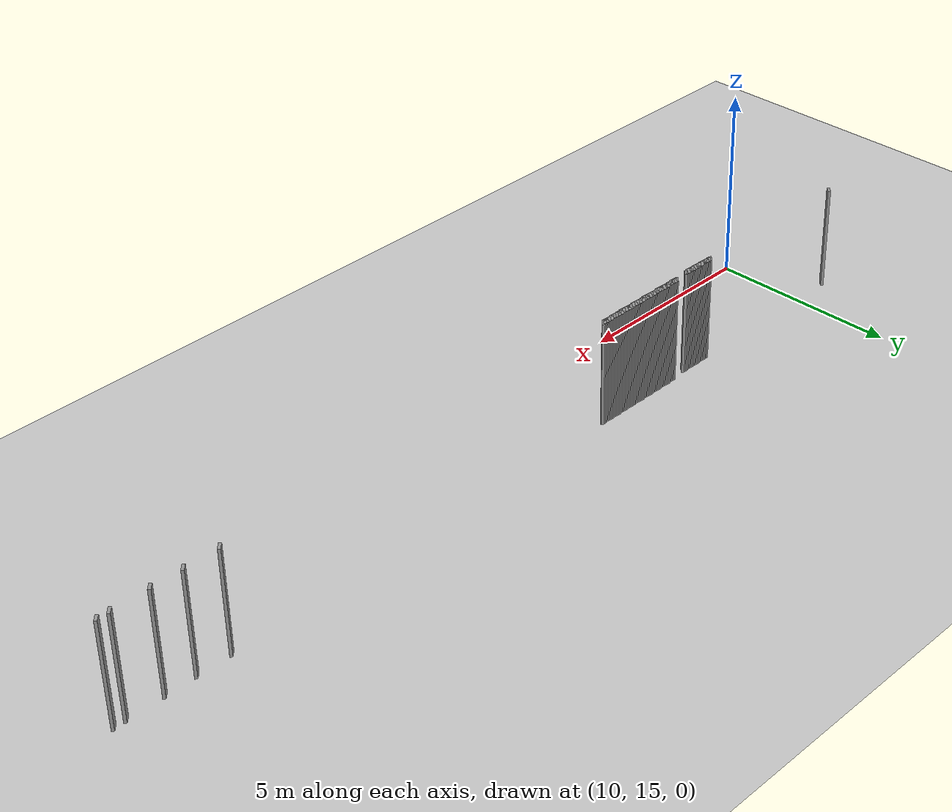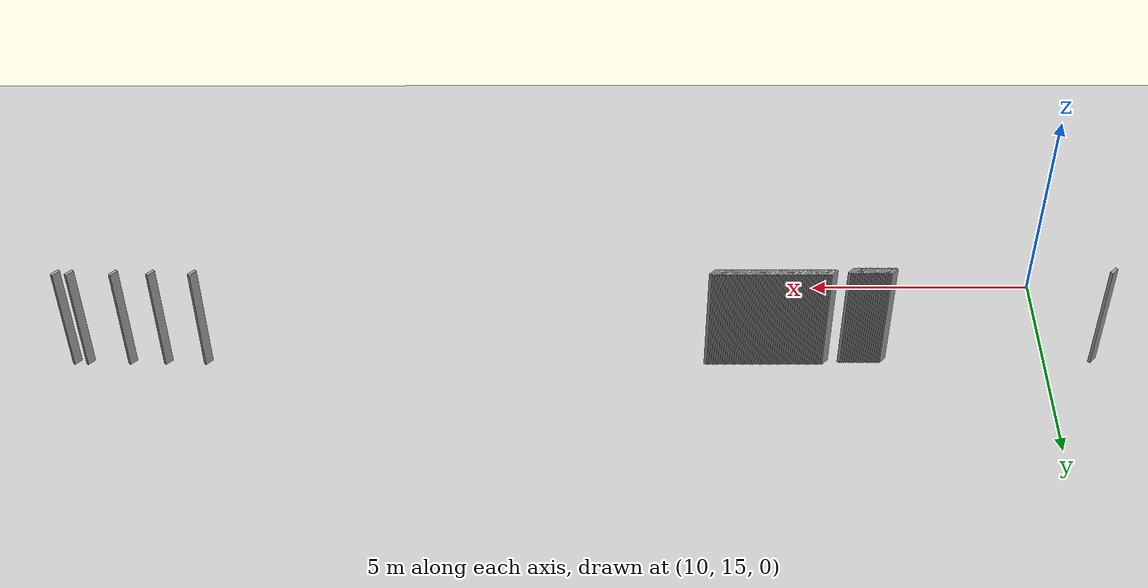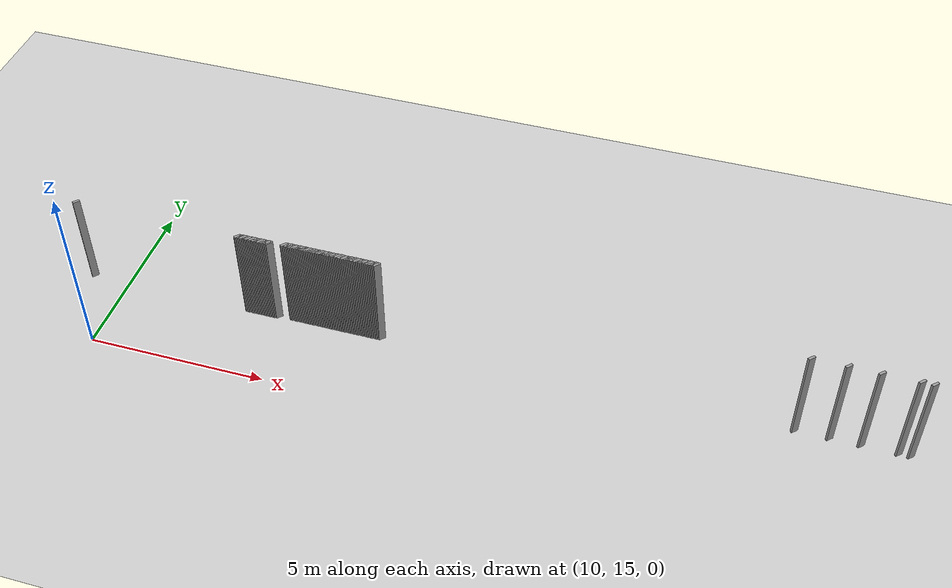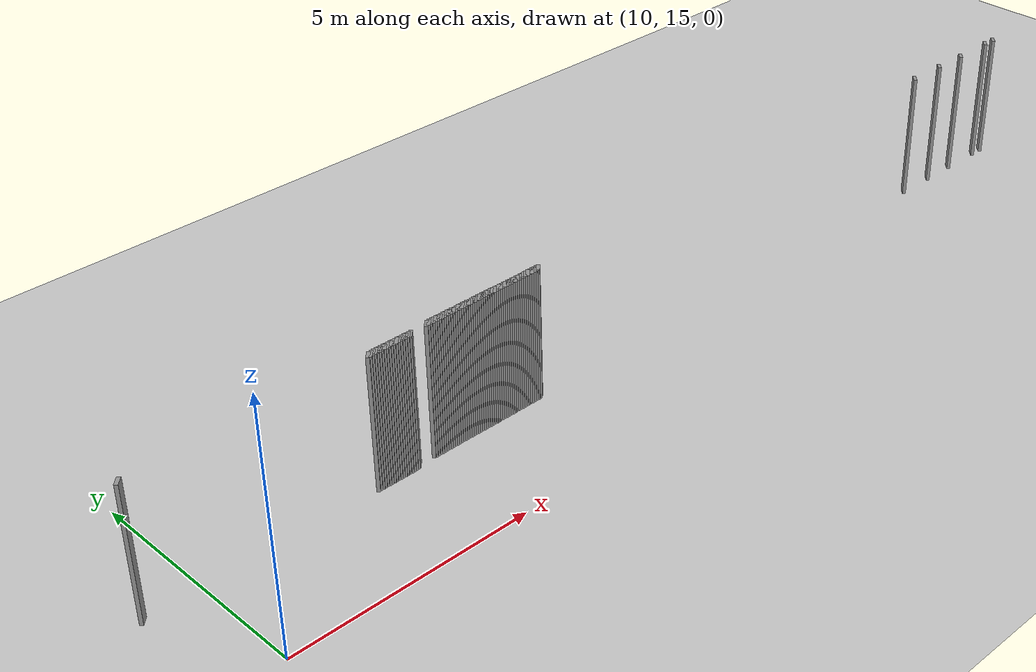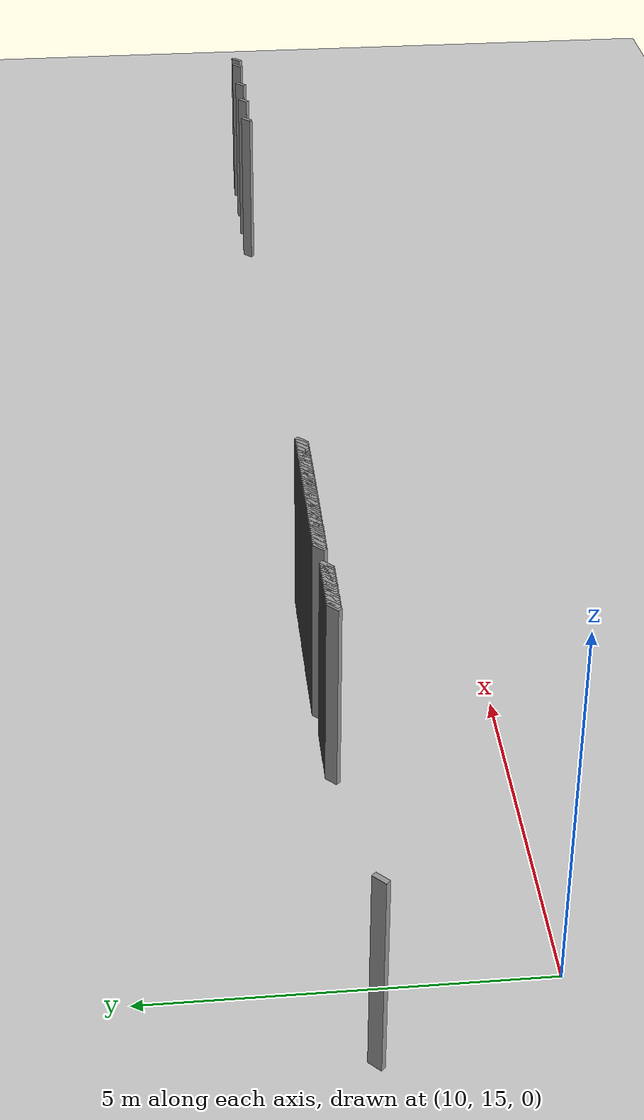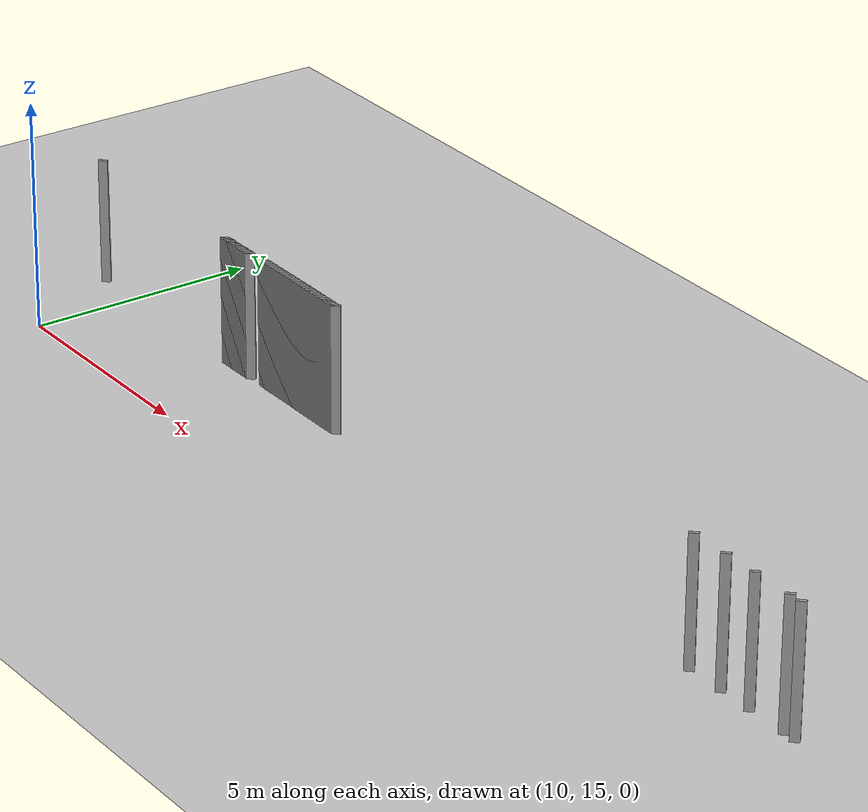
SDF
<sdf version="1.5">
 <world name="default">
  <include><uri>model://ground_plane</uri></include>
  <include><uri>model://sun</uri></include>
  <model name="grey_wall_869">
   <static>1</static>
   <link name="link">
    <pose>14.95 17.35  1.4 0 0 -0.785398163397</pose>
    <collision name="collision"><geometry><box><size>0.0707106781187 .2  2.8</size></box></geometry></collision>
    <visual name="visual">
     <cast_shadows>0</cast_shadows>
     <geometry><box><size>0.0707106781187 .2  2.8</size></box></geometry>
     <material>
      <script>
       <uri>model://grey_wall/materials/scripts</uri>
       <uri>model://grey_wall/materials/textures</uri>
       <name>vrc/grey_wall</name>
      </script>
     </material>
    </visual>
   </link>
  </model>
  <model name="grey_wall_870">
   <static>1</static>
   <link name="link">
    <pose>15.0 17.35  1.4 0 0 -0.785398163397</pose>
    <collision name="collision"><geometry><box><size>0.0707106781187 .2  2.8</size></box></geometry></collision>
    <visual name="visual">
     <cast_shadows>0</cast_shadows>
     <geometry><box><size>0.0707106781187 .2  2.8</size></box></geometry>
     <material>
      <script>
       <uri>model://grey_wall/materials/scripts</uri>
       <uri>model://grey_wall/materials/textures</uri>
       <name>vrc/grey_wall</name>
      </script>
     </material>
    </visual>
   </link>
  </model>
  <model name="grey_wall_871">
   <static>1</static>
   <link name="link">
    <pose>15.05 17.35  1.4 0 0 -0.785398163397</pose>
    <collision name="collision"><geometry><box><size>0.0707106781187 .2  2.8</size></box></geometry></collision>
    <visual name="visual">
     <cast_shadows>0</cast_shadows>
     <geometry><box><size>0.0707106781187 .2  2.8</size></box></geometry>
     <material>
      <script>
       <uri>model://grey_wall/materials/scripts</uri>
       <uri>model://grey_wall/materials/textures</uri>
       <name>vrc/grey_wall</name>
      </script>
     </material>
    </visual>
   </link>
  </model>
  <model name="grey_wall_872">
   <static>1</static>
   <link name="link">
    <pose>15.1 17.35  1.4 0 0 -0.785398163397</pose>
    <collision name="collision"><geometry><box><size>0.0707106781187 .2  2.8</size></box></geometry></collision>
    <visual name="visual">
     <cast_shadows>0</cast_shadows>
     <geometry><box><size>0.0707106781187 .2  2.8</size></box></geometry>
     <material>
      <script>
       <uri>model://grey_wall/materials/scripts</uri>
       <uri>model://grey_wall/materials/textures</uri>
       <name>vrc/grey_wall</name>
      </script>
     </material>
    </visual>
   </link>
  </model>
  <model name="grey_wall_873">
   <static>1</static>
   <link name="link">
    <pose>15.15 17.35  1.4 0 0 -0.785398163397</pose>
    <collision name="collision"><geometry><box><size>0.0707106781187 .2  2.8</size></box></geometry></collision>
    <visual name="visual">
     <cast_shadows>0</cast_shadows>
     <geometry><box><size>0.0707106781187 .2  2.8</size></box></geometry>
     <material>
      <script>
       <uri>model://grey_wall/materials/scripts</uri>
       <uri>model://grey_wall/materials/textures</uri>
       <name>vrc/grey_wall</name>
      </script>
     </material>
    </visual>
   </link>
  </model>
  <model name="grey_wall_874">
   <static>1</static>
   <link name="link">
    <pose>15.2 17.35  1.4 0 0 -0.785398163397</pose>
    <collision name="collision"><geometry><box><size>0.0707106781187 .2  2.8</size></box></geometry></collision>
    <visual name="visual">
     <cast_shadows>0</cast_shadows>
     <geometry><box><size>0.0707106781187 .2  2.8</size></box></geometry>
     <material>
      <script>
       <uri>model://grey_wall/materials/scripts</uri>
       <uri>model://grey_wall/materials/textures</uri>
       <name>vrc/grey_wall</name>
      </script>
     </material>
    </visual>
   </link>
  </model>
  <model name="grey_wall_875">
   <static>1</static>
   <link name="link">
    <pose>15.25 17.35  1.4 0 0 -0.785398163397</pose>
    <collision name="collision"><geometry><box><size>0.0707106781187 .2  2.8</size></box></geometry></collision>
    <visual name="visual">
     <cast_shadows>0</cast_shadows>
     <geometry><box><size>0.0707106781187 .2  2.8</size></box></geometry>
     <material>
      <script>
       <uri>model://grey_wall/materials/scripts</uri>
       <uri>model://grey_wall/materials/textures</uri>
       <name>vrc/grey_wall</name>
      </script>
     </material>
    </visual>
   </link>
  </model>
  <model name="grey_wall_876">
   <static>1</static>
   <link name="link">
    <pose>15.3 17.35  1.4 0 0 -0.785398163397</pose>
    <collision name="collision"><geometry><box><size>0.0707106781187 .2  2.8</size></box></geometry></collision>
    <visual name="visual">
     <cast_shadows>0</cast_shadows>
     <geometry><box><size>0.0707106781187 .2  2.8</size></box></geometry>
     <material>
      <script>
       <uri>model://grey_wall/materials/scripts</uri>
       <uri>model://grey_wall/materials/textures</uri>
       <name>vrc/grey_wall</name>
      </script>
     </material>
    </visual>
   </link>
  </model>
  <model name="grey_wall_877">
   <static>1</static>
   <link name="link">
    <pose>15.35 17.35  1.4 0 0 -0.785398163397</pose>
    <collision name="collision"><geometry><box><size>0.0707106781187 .2  2.8</size></box></geometry></collision>
    <visual name="visual">
     <cast_shadows>0</cast_shadows>
     <geometry><box><size>0.0707106781187 .2  2.8</size></box></geometry>
     <material>
      <script>
       <uri>model://grey_wall/materials/scripts</uri>
       <uri>model://grey_wall/materials/textures</uri>
       <name>vrc/grey_wall</name>
      </script>
     </material>
    </visual>
   </link>
  </model>
  <model name="grey_wall_878">
   <static>1</static>
   <link name="link">
    <pose>15.4 17.35  1.4 0 0 -0.785398163397</pose>
    <collision name="collision"><geometry><box><size>0.0707106781187 .2  2.8</size></box></geometry></collision>
    <visual name="visual">
     <cast_shadows>0</cast_shadows>
     <geometry><box><size>0.0707106781187 .2  2.8</size></box></geometry>
     <material>
      <script>
       <uri>model://grey_wall/materials/scripts</uri>
       <uri>model://grey_wall/materials/textures</uri>
       <name>vrc/grey_wall</name>
      </script>
     </material>
    </visual>
   </link>
  </model>
  <model name="grey_wall_879">
   <static>1</static>
   <link name="link">
    <pose>15.45 17.35  1.4 0 0 -0.785398163397</pose>
    <collision name="collision"><geometry><box><size>0.0707106781187 .2  2.8</size></box></geometry></collision>
    <visual name="visual">
     <cast_shadows>0</cast_shadows>
     <geometry><box><size>0.0707106781187 .2  2.8</size></box></geometry>
     <material>
      <script>
       <uri>model://grey_wall/materials/scripts</uri>
       <uri>model://grey_wall/materials/textures</uri>
       <name>vrc/grey_wall</name>
      </script>
     </material>
    </visual>
   </link>
  </model>
  <model name="grey_wall_880">
   <static>1</static>
   <link name="link">
    <pose>15.5 17.35  1.4 0 0 -0.785398163397</pose>
    <collision name="collision"><geometry><box><size>0.0707106781187 .2  2.8</size></box></geometry></collision>
    <visual name="visual">
     <cast_shadows>0</cast_shadows>
     <geometry><box><size>0.0707106781187 .2  2.8</size></box></geometry>
     <material>
      <script>
       <uri>model://grey_wall/materials/scripts</uri>
       <uri>model://grey_wall/materials/textures</uri>
       <name>vrc/grey_wall</name>
      </script>
     </material>
    </visual>
   </link>
  </model>
  <model name="grey_wall_881">
   <static>1</static>
   <link name="link">
    <pose>15.55 17.35  1.4 0 0 -0.785398163397</pose>
    <collision name="collision"><geometry><box><size>0.0707106781187 .2  2.8</size></box></geometry></collision>
    <visual name="visual">
     <cast_shadows>0</cast_shadows>
     <geometry><box><size>0.0707106781187 .2  2.8</size></box></geometry>
     <material>
      <script>
       <uri>model://grey_wall/materials/scripts</uri>
       <uri>model://grey_wall/materials/textures</uri>
       <name>vrc/grey_wall</name>
      </script>
     </material>
    </visual>
   </link>
  </model>
  <model name="grey_wall_882">
   <static>1</static>
   <link name="link">
    <pose>15.6 17.35  1.4 0 0 -0.785398163397</pose>
    <collision name="collision"><geometry><box><size>0.0707106781187 .2  2.8</size></box></geometry></collision>
    <visual name="visual">
     <cast_shadows>0</cast_shadows>
     <geometry><box><size>0.0707106781187 .2  2.8</size></box></geometry>
     <material>
      <script>
       <uri>model://grey_wall/materials/scripts</uri>
       <uri>model://grey_wall/materials/textures</uri>
       <name>vrc/grey_wall</name>
      </script>
     </material>
    </visual>
   </link>
  </model>
  <model name="grey_wall_883">
   <static>1</static>
   <link name="link">
    <pose>15.65 17.35  1.4 0 0 -0.785398163397</pose>
    <collision name="collision"><geometry><box><size>0.0707106781187 .2  2.8</size></box></geometry></collision>
    <visual name="visual">
     <cast_shadows>0</cast_shadows>
     <geometry><box><size>0.0707106781187 .2  2.8</size></box></geometry>
     <material>
      <script>
       <uri>model://grey_wall/materials/scripts</uri>
       <uri>model://grey_wall/materials/textures</uri>
       <name>vrc/grey_wall</name>
      </script>
     </material>
    </visual>
   </link>
  </model>
  <model name="grey_wall_884">
   <static>1</static>
   <link name="link">
    <pose>15.7 17.35  1.4 0 0 -0.785398163397</pose>
    <collision name="collision"><geometry><box><size>0.0707106781187 .2  2.8</size></box></geometry></collision>
    <visual name="visual">
     <cast_shadows>0</cast_shadows>
     <geometry><box><size>0.0707106781187 .2  2.8</size></box></geometry>
     <material>
      <script>
       <uri>model://grey_wall/materials/scripts</uri>
       <uri>model://grey_wall/materials/textures</uri>
       <name>vrc/grey_wall</name>
      </script>
     </material>
    </visual>
   </link>
  </model>
  <model name="grey_wall_885">
   <static>1</static>
   <link name="link">
    <pose>15.75 17.35  1.4 0 0 -0.785398163397</pose>
    <collision name="collision"><geometry><box><size>0.0707106781187 .2  2.8</size></box></geometry></collision>
    <visual name="visual">
     <cast_shadows>0</cast_shadows>
     <geometry><box><size>0.0707106781187 .2  2.8</size></box></geometry>
     <material>
      <script>
       <uri>model://grey_wall/materials/scripts</uri>
       <uri>model://grey_wall/materials/textures</uri>
       <name>vrc/grey_wall</name>
      </script>
     </material>
    </visual>
   </link>
  </model>
  <model name="grey_wall_886">
   <static>1</static>
   <link name="link">
    <pose>15.8 17.35  1.4 0 0 -0.785398163397</pose>
    <collision name="collision"><geometry><box><size>0.0707106781187 .2  2.8</size></box></geometry></collision>
    <visual name="visual">
     <cast_shadows>0</cast_shadows>
     <geometry><box><size>0.0707106781187 .2  2.8</size></box></geometry>
     <material>
      <script>
       <uri>model://grey_wall/materials/scripts</uri>
       <uri>model://grey_wall/materials/textures</uri>
       <name>vrc/grey_wall</name>
      </script>
     </material>
    </visual>
   </link>
  </model>
  <model name="grey_wall_887">
   <static>1</static>
   <link name="link">
    <pose>15.85 17.35  1.4 0 0 -0.785398163397</pose>
    <collision name="collision"><geometry><box><size>0.0707106781187 .2  2.8</size></box></geometry></collision>
    <visual name="visual">
     <cast_shadows>0</cast_shadows>
     <geometry><box><size>0.0707106781187 .2  2.8</size></box></geometry>
     <material>
      <script>
       <uri>model://grey_wall/materials/scripts</uri>
       <uri>model://grey_wall/materials/textures</uri>
       <name>vrc/grey_wall</name>
      </script>
     </material>
    </visual>
   </link>
  </model>
  <model name="grey_wall_888">
   <static>1</static>
   <link name="link">
    <pose>15.9 17.35  1.4 0 0 -0.785398163397</pose>
    <collision name="collision"><geometry><box><size>0.0707106781187 .2  2.8</size></box></geometry></collision>
    <visual name="visual">
     <cast_shadows>0</cast_shadows>
     <geometry><box><size>0.0707106781187 .2  2.8</size></box></geometry>
     <material>
      <script>
       <uri>model://grey_wall/materials/scripts</uri>
       <uri>model://grey_wall/materials/textures</uri>
       <name>vrc/grey_wall</name>
      </script>
     </material>
    </visual>
   </link>
  </model>
  <model name="grey_wall_889">
   <static>1</static>
   <link name="link">
    <pose>15.95 17.35  1.4 0 0 -0.785398163397</pose>
    <collision name="collision"><geometry><box><size>0.0707106781187 .2  2.8</size></box></geometry></collision>
    <visual name="visual">
     <cast_shadows>0</cast_shadows>
     <geometry><box><size>0.0707106781187 .2  2.8</size></box></geometry>
     <material>
      <script>
       <uri>model://grey_wall/materials/scripts</uri>
       <uri>model://grey_wall/materials/textures</uri>
       <name>vrc/grey_wall</name>
      </script>
     </material>
    </visual>
   </link>
  </model>
  <model name="grey_wall_890">
   <static>1</static>
   <link name="link">
    <pose>16.0 17.35  1.4 0 0 -0.785398163397</pose>
    <collision name="collision"><geometry><box><size>0.0707106781187 .2  2.8</size></box></geometry></collision>
    <visual name="visual">
     <cast_shadows>0</cast_shadows>
     <geometry><box><size>0.0707106781187 .2  2.8</size></box></geometry>
     <material>
      <script>
       <uri>model://grey_wall/materials/scripts</uri>
       <uri>model://grey_wall/materials/textures</uri>
       <name>vrc/grey_wall</name>
      </script>
     </material>
    </visual>
   </link>
  </model>
  <model name="grey_wall_891">
   <static>1</static>
   <link name="link">
    <pose>16.05 17.35  1.4 0 0 -0.785398163397</pose>
    <collision name="collision"><geometry><box><size>0.0707106781187 .2  2.8</size></box></geometry></collision>
    <visual name="visual">
     <cast_shadows>0</cast_shadows>
     <geometry><box><size>0.0707106781187 .2  2.8</size></box></geometry>
     <material>
      <script>
       <uri>model://grey_wall/materials/scripts</uri>
       <uri>model://grey_wall/materials/textures</uri>
       <name>vrc/grey_wall</name>
      </script>
     </material>
    </visual>
   </link>
  </model>
  <model name="grey_wall_892">
   <static>1</static>
   <link name="link">
    <pose>16.1 17.35  1.4 0 0 -0.785398163397</pose>
    <collision name="collision"><geometry><box><size>0.0707106781187 .2  2.8</size></box></geometry></collision>
    <visual name="visual">
     <cast_shadows>0</cast_shadows>
     <geometry><box><size>0.0707106781187 .2  2.8</size></box></geometry>
     <material>
      <script>
       <uri>model://grey_wall/materials/scripts</uri>
       <uri>model://grey_wall/materials/textures</uri>
       <name>vrc/grey_wall</name>
      </script>
     </material>
    </visual>
   </link>
  </model>
  <model name="grey_wall_893">
   <static>1</static>
   <link name="link">
    <pose>16.15 17.35  1.4 0 0 -0.785398163397</pose>
    <collision name="collision"><geometry><box><size>0.0707106781187 .2  2.8</size></box></geometry></collision>
    <visual name="visual">
     <cast_shadows>0</cast_shadows>
     <geometry><box><size>0.0707106781187 .2  2.8</size></box></geometry>
     <material>
      <script>
       <uri>model://grey_wall/materials/scripts</uri>
       <uri>model://grey_wall/materials/textures</uri>
       <name>vrc/grey_wall</name>
      </script>
     </material>
    </visual>
   </link>
  </model>
  <model name="grey_wall_894">
   <static>1</static>
   <link name="link">
    <pose>16.2 17.35  1.4 0 0 -0.785398163397</pose>
    <collision name="collision"><geometry><box><size>0.0707106781187 .2  2.8</size></box></geometry></collision>
    <visual name="visual">
     <cast_shadows>0</cast_shadows>
     <geometry><box><size>0.0707106781187 .2  2.8</size></box></geometry>
     <material>
      <script>
       <uri>model://grey_wall/materials/scripts</uri>
       <uri>model://grey_wall/materials/textures</uri>
       <name>vrc/grey_wall</name>
      </script>
     </material>
    </visual>
   </link>
  </model>
  <model name="grey_wall_895">
   <static>1</static>
   <link name="link">
    <pose>16.25 17.35  1.4 0 0 -0.785398163397</pose>
    <collision name="collision"><geometry><box><size>0.0707106781187 .2  2.8</size></box></geometry></collision>
    <visual name="visual">
     <cast_shadows>0</cast_shadows>
     <geometry><box><size>0.0707106781187 .2  2.8</size></box></geometry>
     <material>
      <script>
       <uri>model://grey_wall/materials/scripts</uri>
       <uri>model://grey_wall/materials/textures</uri>
       <name>vrc/grey_wall</name>
      </script>
     </material>
    </visual>
   </link>
  </model>
  <model name="grey_wall_896">
   <static>1</static>
   <link name="link">
    <pose>16.3 17.35  1.4 0 0 -0.785398163397</pose>
    <collision name="collision"><geometry><box><size>0.0707106781187 .2  2.8</size></box></geometry></collision>
    <visual name="visual">
     <cast_shadows>0</cast_shadows>
     <geometry><box><size>0.0707106781187 .2  2.8</size></box></geometry>
     <material>
      <script>
       <uri>model://grey_wall/materials/scripts</uri>
       <uri>model://grey_wall/materials/textures</uri>
       <name>vrc/grey_wall</name>
      </script>
     </material>
    </visual>
   </link>
  </model>
  <model name="grey_wall_897">
   <static>1</static>
   <link name="link">
    <pose>16.35 17.35  1.4 0 0 -0.785398163397</pose>
    <collision name="collision"><geometry><box><size>0.0707106781187 .2  2.8</size></box></geometry></collision>
    <visual name="visual">
     <cast_shadows>0</cast_shadows>
     <geometry><box><size>0.0707106781187 .2  2.8</size></box></geometry>
     <material>
      <script>
       <uri>model://grey_wall/materials/scripts</uri>
       <uri>model://grey_wall/materials/textures</uri>
       <name>vrc/grey_wall</name>
      </script>
     </material>
    </visual>
   </link>
  </model>
  <model name="grey_wall_898">
   <static>1</static>
   <link name="link">
    <pose>16.4 17.35  1.4 0 0 -0.785398163397</pose>
    <collision name="collision"><geometry><box><size>0.0707106781187 .2  2.8</size></box></geometry></collision>
    <visual name="visual">
     <cast_shadows>0</cast_shadows>
     <geometry><box><size>0.0707106781187 .2  2.8</size></box></geometry>
     <material>
      <script>
       <uri>model://grey_wall/materials/scripts</uri>
       <uri>model://grey_wall/materials/textures</uri>
       <name>vrc/grey_wall</name>
      </script>
     </material>
    </visual>
   </link>
  </model>
  <model name="grey_wall_899">
   <static>1</static>
   <link name="link">
    <pose>16.45 17.35  1.4 0 0 -0.785398163397</pose>
    <collision name="collision"><geometry><box><size>0.0707106781187 .2  2.8</size></box></geometry></collision>
    <visual name="visual">
     <cast_shadows>0</cast_shadows>
     <geometry><box><size>0.0707106781187 .2  2.8</size></box></geometry>
     <material>
      <script>
       <uri>model://grey_wall/materials/scripts</uri>
       <uri>model://grey_wall/materials/textures</uri>
       <name>vrc/grey_wall</name>
      </script>
     </material>
    </visual>
   </link>
  </model>
  <model name="grey_wall_900">
   <static>1</static>
   <link name="link">
    <pose>16.5 17.35  1.4 0 0 -0.785398163397</pose>
    <collision name="collision"><geometry><box><size>0.0707106781187 .2  2.8</size></box></geometry></collision>
    <visual name="visual">
     <cast_shadows>0</cast_shadows>
     <geometry><box><size>0.0707106781187 .2  2.8</size></box></geometry>
     <material>
      <script>
       <uri>model://grey_wall/materials/scripts</uri>
       <uri>model://grey_wall/materials/textures</uri>
       <name>vrc/grey_wall</name>
      </script>
     </material>
    </visual>
   </link>
  </model>
  <model name="grey_wall_901">
   <static>1</static>
   <link name="link">
    <pose>16.55 17.35  1.4 0 0 -0.785398163397</pose>
    <collision name="collision"><geometry><box><size>0.0707106781187 .2  2.8</size></box></geometry></collision>
    <visual name="visual">
     <cast_shadows>0</cast_shadows>
     <geometry><box><size>0.0707106781187 .2  2.8</size></box></geometry>
     <material>
      <script>
       <uri>model://grey_wall/materials/scripts</uri>
       <uri>model://grey_wall/materials/textures</uri>
       <name>vrc/grey_wall</name>
      </script>
     </material>
    </visual>
   </link>
  </model>
  <model name="grey_wall_902">
   <static>1</static>
   <link name="link">
    <pose>16.6 17.35  1.4 0 0 -0.785398163397</pose>
    <collision name="collision"><geometry><box><size>0.0707106781187 .2  2.8</size></box></geometry></collision>
    <visual name="visual">
     <cast_shadows>0</cast_shadows>
     <geometry><box><size>0.0707106781187 .2  2.8</size></box></geometry>
     <material>
      <script>
       <uri>model://grey_wall/materials/scripts</uri>
       <uri>model://grey_wall/materials/textures</uri>
       <name>vrc/grey_wall</name>
      </script>
     </material>
    </visual>
   </link>
  </model>
  <model name="grey_wall_903">
   <static>1</static>
   <link name="link">
    <pose>16.65 17.35  1.4 0 0 -0.785398163397</pose>
    <collision name="collision"><geometry><box><size>0.0707106781187 .2  2.8</size></box></geometry></collision>
    <visual name="visual">
     <cast_shadows>0</cast_shadows>
     <geometry><box><size>0.0707106781187 .2  2.8</size></box></geometry>
     <material>
      <script>
       <uri>model://grey_wall/materials/scripts</uri>
       <uri>model://grey_wall/materials/textures</uri>
       <name>vrc/grey_wall</name>
      </script>
     </material>
    </visual>
   </link>
  </model>
  <model name="grey_wall_904">
   <static>1</static>
   <link name="link">
    <pose>16.7 17.35  1.4 0 0 -0.785398163397</pose>
    <collision name="collision"><geometry><box><size>0.0707106781187 .2  2.8</size></box></geometry></collision>
    <visual name="visual">
     <cast_shadows>0</cast_shadows>
     <geometry><box><size>0.0707106781187 .2  2.8</size></box></geometry>
     <material>
      <script>
       <uri>model://grey_wall/materials/scripts</uri>
       <uri>model://grey_wall/materials/textures</uri>
       <name>vrc/grey_wall</name>
      </script>
     </material>
    </visual>
   </link>
  </model>
  <model name="grey_wall_905">
   <static>1</static>
   <link name="link">
    <pose>16.75 17.35  1.4 0 0 -0.785398163397</pose>
    <collision name="collision"><geometry><box><size>0.0707106781187 .2  2.8</size></box></geometry></collision>
    <visual name="visual">
     <cast_shadows>0</cast_shadows>
     <geometry><box><size>0.0707106781187 .2  2.8</size></box></geometry>
     <material>
      <script>
       <uri>model://grey_wall/materials/scripts</uri>
       <uri>model://grey_wall/materials/textures</uri>
       <name>vrc/grey_wall</name>
      </script>
     </material>
    </visual>
   </link>
  </model>
  <model name="grey_wall_906">
   <static>1</static>
   <link name="link">
    <pose>16.8 17.35  1.4 0 0 -0.785398163397</pose>
    <collision name="collision"><geometry><box><size>0.0707106781187 .2  2.8</size></box></geometry></collision>
    <visual name="visual">
     <cast_shadows>0</cast_shadows>
     <geometry><box><size>0.0707106781187 .2  2.8</size></box></geometry>
     <material>
      <script>
       <uri>model://grey_wall/materials/scripts</uri>
       <uri>model://grey_wall/materials/textures</uri>
       <name>vrc/grey_wall</name>
      </script>
     </material>
    </visual>
   </link>
  </model>
  <model name="grey_wall_907">
   <static>1</static>
   <link name="link">
    <pose>16.85 17.35  1.4 0 0 -0.785398163397</pose>
    <collision name="collision"><geometry><box><size>0.0707106781187 .2  2.8</size></box></geometry></collision>
    <visual name="visual">
     <cast_shadows>0</cast_shadows>
     <geometry><box><size>0.0707106781187 .2  2.8</size></box></geometry>
     <material>
      <script>
       <uri>model://grey_wall/materials/scripts</uri>
       <uri>model://grey_wall/materials/textures</uri>
       <name>vrc/grey_wall</name>
      </script>
     </material>
    </visual>
   </link>
  </model>
  <model name="grey_wall_908">
   <static>1</static>
   <link name="link">
    <pose>16.9 17.35  1.4 0 0 -0.785398163397</pose>
    <collision name="collision"><geometry><box><size>0.0707106781187 .2  2.8</size></box></geometry></collision>
    <visual name="visual">
     <cast_shadows>0</cast_shadows>
     <geometry><box><size>0.0707106781187 .2  2.8</size></box></geometry>
     <material>
      <script>
       <uri>model://grey_wall/materials/scripts</uri>
       <uri>model://grey_wall/materials/textures</uri>
       <name>vrc/grey_wall</name>
      </script>
     </material>
    </visual>
   </link>
  </model>
  <model name="grey_wall_909">
   <static>1</static>
   <link name="link">
    <pose>16.95 17.35  1.4 0 0 -0.785398163397</pose>
    <collision name="collision"><geometry><box><size>0.0707106781187 .2  2.8</size></box></geometry></collision>
    <visual name="visual">
     <cast_shadows>0</cast_shadows>
     <geometry><box><size>0.0707106781187 .2  2.8</size></box></geometry>
     <material>
      <script>
       <uri>model://grey_wall/materials/scripts</uri>
       <uri>model://grey_wall/materials/textures</uri>
       <name>vrc/grey_wall</name>
      </script>
     </material>
    </visual>
   </link>
  </model>
  <model name="grey_wall_910">
   <static>1</static>
   <link name="link">
    <pose>17.0 17.35  1.4 0 0 -0.785398163397</pose>
    <collision name="collision"><geometry><box><size>0.0707106781187 .2  2.8</size></box></geometry></collision>
    <visual name="visual">
     <cast_shadows>0</cast_shadows>
     <geometry><box><size>0.0707106781187 .2  2.8</size></box></geometry>
     <material>
      <script>
       <uri>model://grey_wall/materials/scripts</uri>
       <uri>model://grey_wall/materials/textures</uri>
       <name>vrc/grey_wall</name>
      </script>
     </material>
    </visual>
   </link>
  </model>
  <model name="grey_wall_911">
   <static>1</static>
   <link name="link">
    <pose>17.05 17.35  1.4 0 0 -0.785398163397</pose>
    <collision name="collision"><geometry><box><size>0.0707106781187 .2  2.8</size></box></geometry></collision>
    <visual name="visual">
     <cast_shadows>0</cast_shadows>
     <geometry><box><size>0.0707106781187 .2  2.8</size></box></geometry>
     <material>
      <script>
       <uri>model://grey_wall/materials/scripts</uri>
       <uri>model://grey_wall/materials/textures</uri>
       <name>vrc/grey_wall</name>
      </script>
     </material>
    </visual>
   </link>
  </model>
  <model name="grey_wall_912">
   <static>1</static>
   <link name="link">
    <pose>17.1 17.35  1.4 0 0 -0.785398163397</pose>
    <collision name="collision"><geometry><box><size>0.0707106781187 .2  2.8</size></box></geometry></collision>
    <visual name="visual">
     <cast_shadows>0</cast_shadows>
     <geometry><box><size>0.0707106781187 .2  2.8</size></box></geometry>
     <material>
      <script>
       <uri>model://grey_wall/materials/scripts</uri>
       <uri>model://grey_wall/materials/textures</uri>
       <name>vrc/grey_wall</name>
      </script>
     </material>
    </visual>
   </link>
  </model>
  <model name="grey_wall_913">
   <static>1</static>
   <link name="link">
    <pose>17.15 17.35  1.4 0 0 -0.785398163397</pose>
    <collision name="collision"><geometry><box><size>0.0707106781187 .2  2.8</size></box></geometry></collision>
    <visual name="visual">
     <cast_shadows>0</cast_shadows>
     <geometry><box><size>0.0707106781187 .2  2.8</size></box></geometry>
     <material>
      <script>
       <uri>model://grey_wall/materials/scripts</uri>
       <uri>model://grey_wall/materials/textures</uri>
       <name>vrc/grey_wall</name>
      </script>
     </material>
    </visual>
   </link>
  </model>
  <model name="grey_wall_914">
   <static>1</static>
   <link name="link">
    <pose>17.2 17.35  1.4 0 0 -0.785398163397</pose>
    <collision name="collision"><geometry><box><size>0.0707106781187 .2  2.8</size></box></geometry></collision>
    <visual name="visual">
     <cast_shadows>0</cast_shadows>
     <geometry><box><size>0.0707106781187 .2  2.8</size></box></geometry>
     <material>
      <script>
       <uri>model://grey_wall/materials/scripts</uri>
       <uri>model://grey_wall/materials/textures</uri>
       <name>vrc/grey_wall</name>
      </script>
     </material>
    </visual>
   </link>
  </model>
  <model name="grey_wall_915">
   <static>1</static>
   <link name="link">
    <pose>17.25 17.35  1.4 0 0 -0.785398163397</pose>
    <collision name="collision"><geometry><box><size>0.0707106781187 .2  2.8</size></box></geometry></collision>
    <visual name="visual">
     <cast_shadows>0</cast_shadows>
     <geometry><box><size>0.0707106781187 .2  2.8</size></box></geometry>
     <material>
      <script>
       <uri>model://grey_wall/materials/scripts</uri>
       <uri>model://grey_wall/materials/textures</uri>
       <name>vrc/grey_wall</name>
      </script>
     </material>
    </visual>
   </link>
  </model>
  <model name="grey_wall_916">
   <static>1</static>
   <link name="link">
    <pose>17.3 17.35  1.4 0 0 -0.785398163397</pose>
    <collision name="collision"><geometry><box><size>0.0707106781187 .2  2.8</size></box></geometry></collision>
    <visual name="visual">
     <cast_shadows>0</cast_shadows>
     <geometry><box><size>0.0707106781187 .2  2.8</size></box></geometry>
     <material>
      <script>
       <uri>model://grey_wall/materials/scripts</uri>
       <uri>model://grey_wall/materials/textures</uri>
       <name>vrc/grey_wall</name>
      </script>
     </material>
    </visual>
   </link>
  </model>
  <model name="grey_wall_917">
   <static>1</static>
   <link name="link">
    <pose>17.35 17.35  1.4 0 0 -0.785398163397</pose>
    <collision name="collision"><geometry><box><size>0.0707106781187 .2  2.8</size></box></geometry></collision>
    <visual name="visual">
     <cast_shadows>0</cast_shadows>
     <geometry><box><size>0.0707106781187 .2  2.8</size></box></geometry>
     <material>
      <script>
       <uri>model://grey_wall/materials/scripts</uri>
       <uri>model://grey_wall/materials/textures</uri>
       <name>vrc/grey_wall</name>
      </script>
     </material>
    </visual>
   </link>
  </model>
  <model name="grey_wall_918">
   <static>1</static>
   <link name="link">
    <pose>17.4 17.35  1.4 0 0 -0.785398163397</pose>
    <collision name="collision"><geometry><box><size>0.0707106781187 .2  2.8</size></box></geometry></collision>
    <visual name="visual">
     <cast_shadows>0</cast_shadows>
     <geometry><box><size>0.0707106781187 .2  2.8</size></box></geometry>
     <material>
      <script>
       <uri>model://grey_wall/materials/scripts</uri>
       <uri>model://grey_wall/materials/textures</uri>
       <name>vrc/grey_wall</name>
      </script>
     </material>
    </visual>
   </link>
  </model>
  <model name="grey_wall_919">
   <static>1</static>
   <link name="link">
    <pose>17.45 17.35  1.4 0 0 -0.785398163397</pose>
    <collision name="collision"><geometry><box><size>0.0707106781187 .2  2.8</size></box></geometry></collision>
    <visual name="visual">
     <cast_shadows>0</cast_shadows>
     <geometry><box><size>0.0707106781187 .2  2.8</size></box></geometry>
     <material>
      <script>
       <uri>model://grey_wall/materials/scripts</uri>
       <uri>model://grey_wall/materials/textures</uri>
       <name>vrc/grey_wall</name>
      </script>
     </material>
    </visual>
   </link>
  </model>
  <model name="grey_wall_920">
   <static>1</static>
   <link name="link">
    <pose>17.5 17.35  1.4 0 0 -0.785398163397</pose>
    <collision name="collision"><geometry><box><size>0.0707106781187 .2  2.8</size></box></geometry></collision>
    <visual name="visual">
     <cast_shadows>0</cast_shadows>
     <geometry><box><size>0.0707106781187 .2  2.8</size></box></geometry>
     <material>
      <script>
       <uri>model://grey_wall/materials/scripts</uri>
       <uri>model://grey_wall/materials/textures</uri>
       <name>vrc/grey_wall</name>
      </script>
     </material>
    </visual>
   </link>
  </model>
  <model name="grey_wall_921">
   <static>1</static>
   <link name="link">
    <pose>17.55 17.35  1.4 0 0 -0.785398163397</pose>
    <collision name="collision"><geometry><box><size>0.0707106781187 .2  2.8</size></box></geometry></collision>
    <visual name="visual">
     <cast_shadows>0</cast_shadows>
     <geometry><box><size>0.0707106781187 .2  2.8</size></box></geometry>
     <material>
      <script>
       <uri>model://grey_wall/materials/scripts</uri>
       <uri>model://grey_wall/materials/textures</uri>
       <name>vrc/grey_wall</name>
      </script>
     </material>
    </visual>
   </link>
  </model>
  <model name="grey_wall_922">
   <static>1</static>
   <link name="link">
    <pose>28.8 17.35  1.4 0 0 -0.785398163397</pose>
    <collision name="collision"><geometry><box><size>0.0707106781187 .2  2.8</size></box></geometry></collision>
    <visual name="visual">
     <cast_shadows>0</cast_shadows>
     <geometry><box><size>0.0707106781187 .2  2.8</size></box></geometry>
     <material>
      <script>
       <uri>model://grey_wall/materials/scripts</uri>
       <uri>model://grey_wall/materials/textures</uri>
       <name>vrc/grey_wall</name>
      </script>
     </material>
    </visual>
   </link>
  </model>
  <model name="grey_wall_923">
   <static>1</static>
   <link name="link">
    <pose>29.7 17.35  1.4 0 0 -0.785398163397</pose>
    <collision name="collision"><geometry><box><size>0.0707106781187 .2  2.8</size></box></geometry></collision>
    <visual name="visual">
     <cast_shadows>0</cast_shadows>
     <geometry><box><size>0.0707106781187 .2  2.8</size></box></geometry>
     <material>
      <script>
       <uri>model://grey_wall/materials/scripts</uri>
       <uri>model://grey_wall/materials/textures</uri>
       <name>vrc/grey_wall</name>
      </script>
     </material>
    </visual>
   </link>
  </model>
  <model name="grey_wall_924">
   <static>1</static>
   <link name="link">
    <pose>30.5 17.35  1.4 0 0 -0.785398163397</pose>
    <collision name="collision"><geometry><box><size>0.0707106781187 .2  2.8</size></box></geometry></collision>
    <visual name="visual">
     <cast_shadows>0</cast_shadows>
     <geometry><box><size>0.0707106781187 .2  2.8</size></box></geometry>
     <material>
      <script>
       <uri>model://grey_wall/materials/scripts</uri>
       <uri>model://grey_wall/materials/textures</uri>
       <name>vrc/grey_wall</name>
      </script>
     </material>
    </visual>
   </link>
  </model>
  <model name="grey_wall_925">
   <static>1</static>
   <link name="link">
    <pose>31.45 17.35  1.4 0 0 -0.785398163397</pose>
    <collision name="collision"><geometry><box><size>0.0707106781187 .2  2.8</size></box></geometry></collision>
    <visual name="visual">
     <cast_shadows>0</cast_shadows>
     <geometry><box><size>0.0707106781187 .2  2.8</size></box></geometry>
     <material>
      <script>
       <uri>model://grey_wall/materials/scripts</uri>
       <uri>model://grey_wall/materials/textures</uri>
       <name>vrc/grey_wall</name>
      </script>
     </material>
    </visual>
   </link>
  </model>
  <model name="grey_wall_926">
   <static>1</static>
   <link name="link">
    <pose>31.75 17.35  1.4 0 0 -0.785398163397</pose>
    <collision name="collision"><geometry><box><size>0.0707106781187 .2  2.8</size></box></geometry></collision>
    <visual name="visual">
     <cast_shadows>0</cast_shadows>
     <geometry><box><size>0.0707106781187 .2  2.8</size></box></geometry>
     <material>
      <script>
       <uri>model://grey_wall/materials/scripts</uri>
       <uri>model://grey_wall/materials/textures</uri>
       <name>vrc/grey_wall</name>
      </script>
     </material>
    </visual>
   </link>
  </model>
  <model name="grey_wall_927">
   <static>1</static>
   <link name="link">
    <pose>8.9 17.3  1.4 0 0 -0.785398163397</pose>
    <collision name="collision"><geometry><box><size>0.0707106781187 .2  2.8</size></box></geometry></collision>
    <visual name="visual">
     <cast_shadows>0</cast_shadows>
     <geometry><box><size>0.0707106781187 .2  2.8</size></box></geometry>
     <material>
      <script>
       <uri>model://grey_wall/materials/scripts</uri>
       <uri>model://grey_wall/materials/textures</uri>
       <name>vrc/grey_wall</name>
      </script>
     </material>
    </visual>
   </link>
  </model>
  <model name="grey_wall_928">
   <static>1</static>
   <link name="link">
    <pose>13.65 17.3  1.4 0 0 -0.785398163397</pose>
    <collision name="collision"><geometry><box><size>0.0707106781187 .2  2.8</size></box></geometry></collision>
    <visual name="visual">
     <cast_shadows>0</cast_shadows>
     <geometry><box><size>0.0707106781187 .2  2.8</size></box></geometry>
     <material>
      <script>
       <uri>model://grey_wall/materials/scripts</uri>
       <uri>model://grey_wall/materials/textures</uri>
       <name>vrc/grey_wall</name>
      </script>
     </material>
    </visual>
   </link>
  </model>
  <model name="grey_wall_929">
   <static>1</static>
   <link name="link">
    <pose>13.7 17.3  1.4 0 0 -0.785398163397</pose>
    <collision name="collision"><geometry><box><size>0.0707106781187 .2  2.8</size></box></geometry></collision>
    <visual name="visual">
     <cast_shadows>0</cast_shadows>
     <geometry><box><size>0.0707106781187 .2  2.8</size></box></geometry>
     <material>
      <script>
       <uri>model://grey_wall/materials/scripts</uri>
       <uri>model://grey_wall/materials/textures</uri>
       <name>vrc/grey_wall</name>
      </script>
     </material>
    </visual>
   </link>
  </model>
  <model name="grey_wall_930">
   <static>1</static>
   <link name="link">
    <pose>13.75 17.3  1.4 0 0 -0.785398163397</pose>
    <collision name="collision"><geometry><box><size>0.0707106781187 .2  2.8</size></box></geometry></collision>
    <visual name="visual">
     <cast_shadows>0</cast_shadows>
     <geometry><box><size>0.0707106781187 .2  2.8</size></box></geometry>
     <material>
      <script>
       <uri>model://grey_wall/materials/scripts</uri>
       <uri>model://grey_wall/materials/textures</uri>
       <name>vrc/grey_wall</name>
      </script>
     </material>
    </visual>
   </link>
  </model>
  <model name="grey_wall_931">
   <static>1</static>
   <link name="link">
    <pose>13.8 17.3  1.4 0 0 -0.785398163397</pose>
    <collision name="collision"><geometry><box><size>0.0707106781187 .2  2.8</size></box></geometry></collision>
    <visual name="visual">
     <cast_shadows>0</cast_shadows>
     <geometry><box><size>0.0707106781187 .2  2.8</size></box></geometry>
     <material>
      <script>
       <uri>model://grey_wall/materials/scripts</uri>
       <uri>model://grey_wall/materials/textures</uri>
       <name>vrc/grey_wall</name>
      </script>
     </material>
    </visual>
   </link>
  </model>
  <model name="grey_wall_932">
   <static>1</static>
   <link name="link">
    <pose>13.85 17.3  1.4 0 0 -0.785398163397</pose>
    <collision name="collision"><geometry><box><size>0.0707106781187 .2  2.8</size></box></geometry></collision>
    <visual name="visual">
     <cast_shadows>0</cast_shadows>
     <geometry><box><size>0.0707106781187 .2  2.8</size></box></geometry>
     <material>
      <script>
       <uri>model://grey_wall/materials/scripts</uri>
       <uri>model://grey_wall/materials/textures</uri>
       <name>vrc/grey_wall</name>
      </script>
     </material>
    </visual>
   </link>
  </model>
  <model name="grey_wall_933">
   <static>1</static>
   <link name="link">
    <pose>13.9 17.3  1.4 0 0 -0.785398163397</pose>
    <collision name="collision"><geometry><box><size>0.0707106781187 .2  2.8</size></box></geometry></collision>
    <visual name="visual">
     <cast_shadows>0</cast_shadows>
     <geometry><box><size>0.0707106781187 .2  2.8</size></box></geometry>
     <material>
      <script>
       <uri>model://grey_wall/materials/scripts</uri>
       <uri>model://grey_wall/materials/textures</uri>
       <name>vrc/grey_wall</name>
      </script>
     </material>
    </visual>
   </link>
  </model>
  <model name="grey_wall_934">
   <static>1</static>
   <link name="link">
    <pose>13.95 17.3  1.4 0 0 -0.785398163397</pose>
    <collision name="collision"><geometry><box><size>0.0707106781187 .2  2.8</size></box></geometry></collision>
    <visual name="visual">
     <cast_shadows>0</cast_shadows>
     <geometry><box><size>0.0707106781187 .2  2.8</size></box></geometry>
     <material>
      <script>
       <uri>model://grey_wall/materials/scripts</uri>
       <uri>model://grey_wall/materials/textures</uri>
       <name>vrc/grey_wall</name>
      </script>
     </material>
    </visual>
   </link>
  </model>
  <model name="grey_wall_935">
   <static>1</static>
   <link name="link">
    <pose>14.0 17.3  1.4 0 0 -0.785398163397</pose>
    <collision name="collision"><geometry><box><size>0.0707106781187 .2  2.8</size></box></geometry></collision>
    <visual name="visual">
     <cast_shadows>0</cast_shadows>
     <geometry><box><size>0.0707106781187 .2  2.8</size></box></geometry>
     <material>
      <script>
       <uri>model://grey_wall/materials/scripts</uri>
       <uri>model://grey_wall/materials/textures</uri>
       <name>vrc/grey_wall</name>
      </script>
     </material>
    </visual>
   </link>
  </model>
  <model name="grey_wall_936">
   <static>1</static>
   <link name="link">
    <pose>14.05 17.3  1.4 0 0 -0.785398163397</pose>
    <collision name="collision"><geometry><box><size>0.0707106781187 .2  2.8</size></box></geometry></collision>
    <visual name="visual">
     <cast_shadows>0</cast_shadows>
     <geometry><box><size>0.0707106781187 .2  2.8</size></box></geometry>
     <material>
      <script>
       <uri>model://grey_wall/materials/scripts</uri>
       <uri>model://grey_wall/materials/textures</uri>
       <name>vrc/grey_wall</name>
      </script>
     </material>
    </visual>
   </link>
  </model>
  <model name="grey_wall_937">
   <static>1</static>
   <link name="link">
    <pose>14.1 17.3  1.4 0 0 -0.785398163397</pose>
    <collision name="collision"><geometry><box><size>0.0707106781187 .2  2.8</size></box></geometry></collision>
    <visual name="visual">
     <cast_shadows>0</cast_shadows>
     <geometry><box><size>0.0707106781187 .2  2.8</size></box></geometry>
     <material>
      <script>
       <uri>model://grey_wall/materials/scripts</uri>
       <uri>model://grey_wall/materials/textures</uri>
       <name>vrc/grey_wall</name>
      </script>
     </material>
    </visual>
   </link>
  </model>
  <model name="grey_wall_938">
   <static>1</static>
   <link name="link">
    <pose>14.15 17.3  1.4 0 0 -0.785398163397</pose>
    <collision name="collision"><geometry><box><size>0.0707106781187 .2  2.8</size></box></geometry></collision>
    <visual name="visual">
     <cast_shadows>0</cast_shadows>
     <geometry><box><size>0.0707106781187 .2  2.8</size></box></geometry>
     <material>
      <script>
       <uri>model://grey_wall/materials/scripts</uri>
       <uri>model://grey_wall/materials/textures</uri>
       <name>vrc/grey_wall</name>
      </script>
     </material>
    </visual>
   </link>
  </model>
  <model name="grey_wall_939">
   <static>1</static>
   <link name="link">
    <pose>14.2 17.3  1.4 0 0 -0.785398163397</pose>
    <collision name="collision"><geometry><box><size>0.0707106781187 .2  2.8</size></box></geometry></collision>
    <visual name="visual">
     <cast_shadows>0</cast_shadows>
     <geometry><box><size>0.0707106781187 .2  2.8</size></box></geometry>
     <material>
      <script>
       <uri>model://grey_wall/materials/scripts</uri>
       <uri>model://grey_wall/materials/textures</uri>
       <name>vrc/grey_wall</name>
      </script>
     </material>
    </visual>
   </link>
  </model>
  <model name="grey_wall_940">
   <static>1</static>
   <link name="link">
    <pose>14.25 17.3  1.4 0 0 -0.785398163397</pose>
    <collision name="collision"><geometry><box><size>0.0707106781187 .2  2.8</size></box></geometry></collision>
    <visual name="visual">
     <cast_shadows>0</cast_shadows>
     <geometry><box><size>0.0707106781187 .2  2.8</size></box></geometry>
     <material>
      <script>
       <uri>model://grey_wall/materials/scripts</uri>
       <uri>model://grey_wall/materials/textures</uri>
       <name>vrc/grey_wall</name>
      </script>
     </material>
    </visual>
   </link>
  </model>
  <model name="grey_wall_941">
   <static>1</static>
   <link name="link">
    <pose>14.3 17.3  1.4 0 0 -0.785398163397</pose>
    <collision name="collision"><geometry><box><size>0.0707106781187 .2  2.8</size></box></geometry></collision>
    <visual name="visual">
     <cast_shadows>0</cast_shadows>
     <geometry><box><size>0.0707106781187 .2  2.8</size></box></geometry>
     <material>
      <script>
       <uri>model://grey_wall/materials/scripts</uri>
       <uri>model://grey_wall/materials/textures</uri>
       <name>vrc/grey_wall</name>
      </script>
     </material>
    </visual>
   </link>
  </model>
  <model name="grey_wall_942">
   <static>1</static>
   <link name="link">
    <pose>14.35 17.3  1.4 0 0 -0.785398163397</pose>
    <collision name="collision"><geometry><box><size>0.0707106781187 .2  2.8</size></box></geometry></collision>
    <visual name="visual">
     <cast_shadows>0</cast_shadows>
     <geometry><box><size>0.0707106781187 .2  2.8</size></box></geometry>
     <material>
      <script>
       <uri>model://grey_wall/materials/scripts</uri>
       <uri>model://grey_wall/materials/textures</uri>
       <name>vrc/grey_wall</name>
      </script>
     </material>
    </visual>
   </link>
  </model>
  <model name="grey_wall_943">
   <static>1</static>
   <link name="link">
    <pose>14.4 17.3  1.4 0 0 -0.785398163397</pose>
    <collision name="collision"><geometry><box><size>0.0707106781187 .2  2.8</size></box></geometry></collision>
    <visual name="visual">
     <cast_shadows>0</cast_shadows>
     <geometry><box><size>0.0707106781187 .2  2.8</size></box></geometry>
     <material>
      <script>
       <uri>model://grey_wall/materials/scripts</uri>
       <uri>model://grey_wall/materials/textures</uri>
       <name>vrc/grey_wall</name>
      </script>
     </material>
    </visual>
   </link>
  </model>
  <model name="grey_wall_944">
   <static>1</static>
   <link name="link">
    <pose>14.45 17.3  1.4 0 0 -0.785398163397</pose>
    <collision name="collision"><geometry><box><size>0.0707106781187 .2  2.8</size></box></geometry></collision>
    <visual name="visual">
     <cast_shadows>0</cast_shadows>
     <geometry><box><size>0.0707106781187 .2  2.8</size></box></geometry>
     <material>
      <script>
       <uri>model://grey_wall/materials/scripts</uri>
       <uri>model://grey_wall/materials/textures</uri>
       <name>vrc/grey_wall</name>
      </script>
     </material>
    </visual>
   </link>
  </model>
  <model name="grey_wall_945">
   <static>1</static>
   <link name="link">
    <pose>14.5 17.3  1.4 0 0 -0.785398163397</pose>
    <collision name="collision"><geometry><box><size>0.0707106781187 .2  2.8</size></box></geometry></collision>
    <visual name="visual">
     <cast_shadows>0</cast_shadows>
     <geometry><box><size>0.0707106781187 .2  2.8</size></box></geometry>
     <material>
      <script>
       <uri>model://grey_wall/materials/scripts</uri>
       <uri>model://grey_wall/materials/textures</uri>
       <name>vrc/grey_wall</name>
      </script>
     </material>
    </visual>
   </link>
  </model>
  <model name="grey_wall_946">
   <static>1</static>
   <link name="link">
    <pose>14.55 17.3  1.4 0 0 -0.785398163397</pose>
    <collision name="collision"><geometry><box><size>0.0707106781187 .2  2.8</size></box></geometry></collision>
    <visual name="visual">
     <cast_shadows>0</cast_shadows>
     <geometry><box><size>0.0707106781187 .2  2.8</size></box></geometry>
     <material>
      <script>
       <uri>model://grey_wall/materials/scripts</uri>
       <uri>model://grey_wall/materials/textures</uri>
       <name>vrc/grey_wall</name>
      </script>
     </material>
    </visual>
   </link>
  </model>
 </world>
</sdf>
